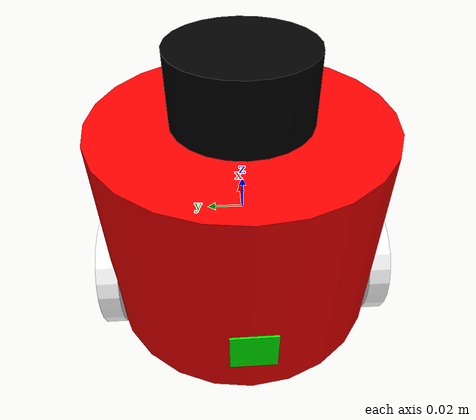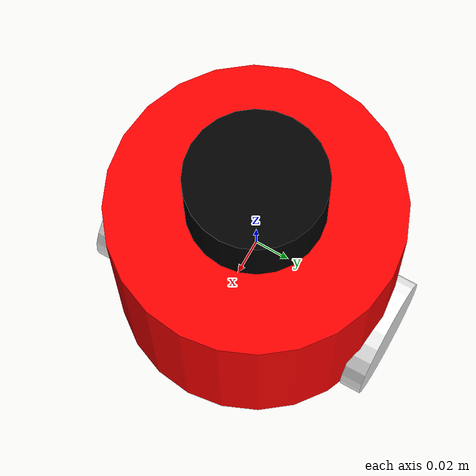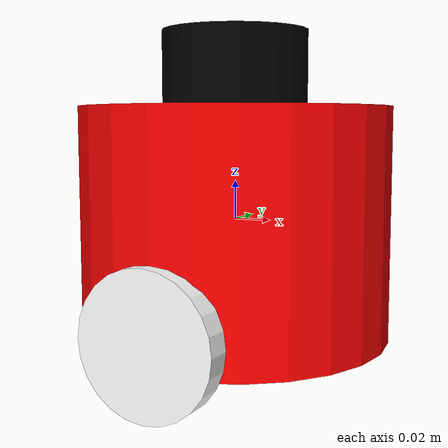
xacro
<?xml version="1.0"?>
<robot name="robotic" xmlns:xacro="http://ros.org/wiki/xacro">

  <!-- ****************** ROBOT CONSTANTS *******************************  -->
  <!-- Define the siz.e of the robot's main chassis in meters -->
  <xacro:property name="base_width" value="0.160" />
  <xacro:property name="base_length" value="0.120" />
  <xacro:property name="base_height" value="0.160" />

  <!-- Define the shape of the robot's two back wheels in meters -->
  <xacro:property name="wheel_radius" value="0.035" />
  <xacro:property name="wheel_width" value="0.0124" />

  <!-- x-axis points forward, y-axis points to left, z-axis points upwards -->
  <!-- Define the gap between the wheel and chassis along y-axis in meters -->
  <xacro:property name="wheel_ygap" value="0.0" /> , <!--
  Position the wheels along the z-axis -->
  <xacro:property name="wheel_zoff" value="${0.012+wheel_radius}" />

  <!-- Position the wheels along the x-axis -->
  <xacro:property name="wheel_xoff" value="0.0" />

  <!-- Define intertial property macros  -->
  <xacro:macro name="box_inertia" params="m w h d">
    <inertial>
      <origin xyz="0 0 0" rpy="${pi/2} 0 ${pi/2}" />
      <mass value="${m}" />
      <inertia ixx="${(m/12) * (h*h + d*d)}" ixy="0.0" ixz="0.0" iyy="${(m/12) * (w*w + d*d)}"
        iyz="0.0" izz="${(m/12) * (w*w + h*h)}" />
    </inertial>
  </xacro:macro>

  <xacro:macro
    name="cylinder_inertia" params="m r h">
    <inertial>
      <origin xyz="0 0 0" rpy="${pi/2} 0 0" />
      <mass value="${m}" />
      <inertia ixx="${(m/12) * (3*r*r + h*h)}" ixy="0" ixz="0" iyy="${(m/12) * (3*r*r + h*h)}"
        iyz="0" izz="${(m/2) * (r*r)}" />
    </inertial>
  </xacro:macro>

  <xacro:macro
    name="sphere_inertia" params="m r">
    <inertial>
      <mass value="${m}" />
      <inertia ixx="${(2/5) * m * (r*r)}" ixy="0.0" ixz="0.0" iyy="${(2/5) * m * (r*r)}" iyz="0.0"
        izz="${(2/5) * m * (r*r)}" />
    </inertial>
  </xacro:macro>

  <!-- ****************** ROBOT BASE FOOTPRINT ***************************  -->
  <!-- Define the center of the main robot chassis projected on the ground -->
  <link name="base_footprint" />

  <!-- The base footprint of the robot is located underneath the chassis -->
  <joint
    name="base_footprint_joint" type="fixed">
    <parent link="base_link" />
    <child link="base_footprint" />
    <origin xyz="0.0 0.0 ${(wheel_radius+wheel_zoff)}" rpy="0 0 0" />
  </joint>

  <!-- ********************** ROBOT BASE *********************************  -->
  <link
    name="base_link">
    <visual>
      <origin xyz="0 0 -0.002" rpy="0 0 0" />
      <geometry>
        <cylinder length="${base_length}" radius="${base_width/2}" />
      </geometry>
      <material name="Red">
        <color rgba="1.0 0.0 0.0 1.0" />
      </material>
    </visual>

    <collision>
      <geometry>
        <box size="${base_length} ${base_width} ${base_height}" />
      </geometry>
    </collision>

  </link>

  <gazebo
    reference="base_link">
    <material>Gazebo/Red</material>
  </gazebo>

  <!-- *********************** DRIVE WHEELS ******************************  -->

  <xacro:macro name="wheel" params="prefix x_reflect y_reflect">
    <link name="${prefix}_link">
      <visual>
        <origin xyz="0 0 0" rpy="${pi/2} 0 0" />
        <geometry>
          <cylinder radius="${wheel_radius}" length="${wheel_width}" />
        </geometry>
        <material name="White">
          <color rgba="1.0 1.0 1.0 1.0" />
        </material>
      </visual>

      <collision>180
        <origin xyz="0 0 0" rpy="${pi/2} 0 0" />
        <geometry>
          <cylinder radius="${wheel_radius}" length="${wheel_width}" />
        </geometry>
      </collision>

      <xacro:cylinder_inertia m="0.1" r="${wheel_radius}" h="${wheel_width}" />

    </link>

    <!-- Connect the wheels to the base_link at the appropriate location, and
         define a continuous joint to allow the wheels to freely rotate about
         an axis -->
    <joint name="${prefix}_joint" type="continuous">
      <parent link="base_link" />
      <child link="${prefix}_link" />
      <origin xyz="${x_reflect*wheel_xoff} ${y_reflect*(base_width/2+wheel_ygap)} ${-wheel_zoff}"
        rpy="0 0 0" />
      <axis xyz="0 1 0" />
    </joint>
  </xacro:macro>

  <xacro:wheel prefix="left_wheel" x_reflect="0" y_reflect="1" />
  <xacro:wheel prefix="right_wheel" x_reflect="0" y_reflect="-1" />

  <!-- *********************** TEFLON ******************************  -->

  <link name="teflon">
    <visual>
      <geometry>
        <box size="0.013 0.102 0.0247"/>
      </geometry>
      <material name="White">
        <color rgba="1.0 1.0 1.0 1.0" />
      </material>
    </visual>
    <collision>
      <origin xyz="0.0 0.0 0.0" rpy="0.0 0.0 0.0"/>
      <geometry>
        <box size="0.013 0.102 0.0247"/>
      </geometry>
    </collision>
  </link>

  <joint name="teflon_joint" type="fixed">
    <parent link="base_link" />
    <child link="teflon" />
    <origin xyz="0.0 0.0 ${-(base_height/2)+0.013}" rpy="${pi/2} ${pi/2} 0" />
  </joint>

  <!-- *********************** CAMERA SETUP *********************************  -->
  <!-- Each sensor must be attached to a link.                              -->

  <joint
    name="camera_joint" type="fixed">
    <parent link="base_link" />
    <child link="camera_link" />
    <origin xyz="-0.085 0 -0.02" rpy="0 ${pi/2} 0" />
  </joint>

  <link name="camera_link">
    <visual>
      <origin xyz="0 0 0" rpy="0 0 0" />
      <geometry>
        <box size="0.0238 0.0238 0.00112" />
      </geometry>
      <material name="Green">
        <color rgba="0.0 1.0 0.0 1.0" />
      </material>
    </visual>
  </link>

  <!-- *********************** LIDAR SETUP **********************************  -->
  <joint
    name="laser_joint" type="fixed">
    <parent link="base_link" />
    <child link="laser" />
    <origin xyz="0 0 0.07" rpy="${pi} 0 ${pi}" />
  </joint>

  <link name="laser">
    <collision>
      <origin xyz="0 0 0" rpy="0 0 0" />
      <geometry>
        <cylinder radius="${0.075/2}" length="0.053" />
      </geometry>
    </collision>

    <visual>
      <origin xyz="0 0 0" rpy="0 0 0" />
      <geometry>
        <cylinder radius="${0.075/2}" length="0.053" />
      </geometry>
      <material name="Black">
        <color rgba="0.0 0.0 0.0 1.0" />
      </material>
    </visual>

    <inertial>
      <mass value="0.114" />
      <origin xyz="0 0 0" rpy="0 0 0" />
      <inertia ixx="0.001" ixy="0" ixz="0" iyy="0.001" iyz="0" izz="0.001" />
    </inertial>
  </link>

</robot>
